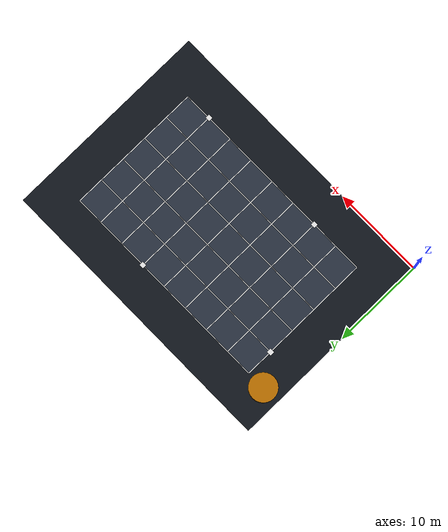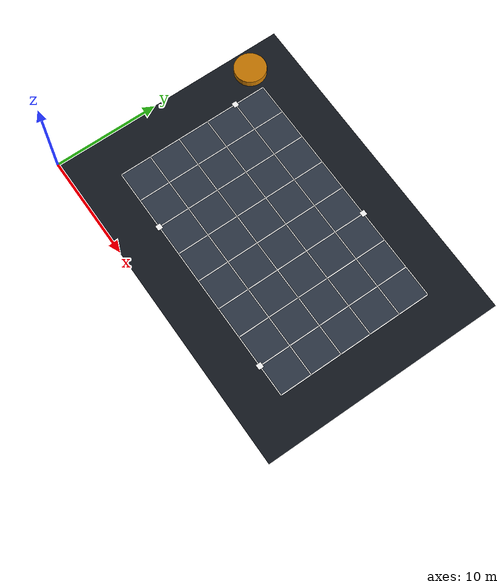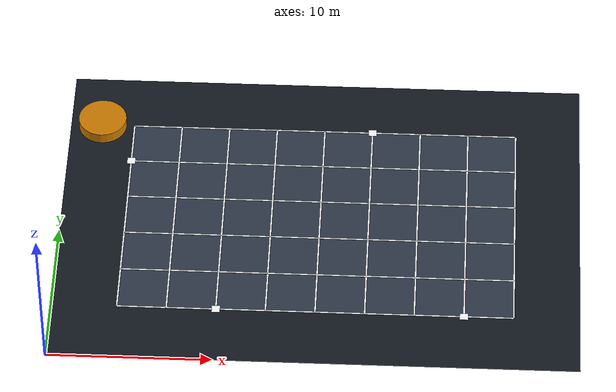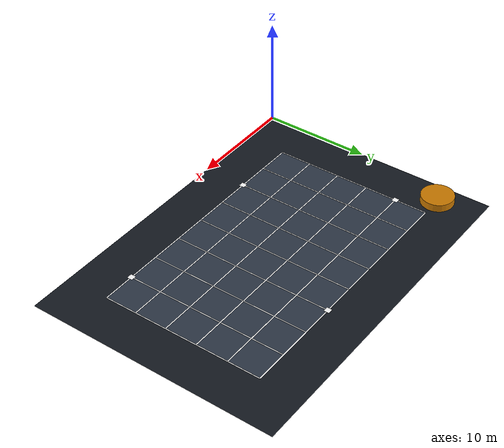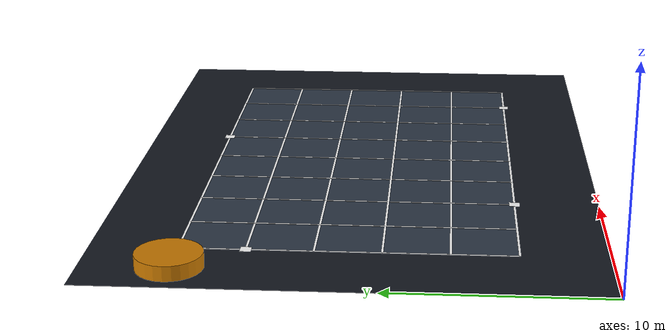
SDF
<sdf version="1.10">
 <world name="sprint_grid_world">
  <physics name="1ms" type="ode">
   <max_step_size>0.001</max_step_size>
   <real_time_factor>1.0</real_time_factor>
  </physics>
  <gravity>0 0 -9.8</gravity>
  <magnetic_field>6e-06 2.3e-05 -4.2e-05</magnetic_field>
  <atmosphere type="adiabatic"/>
  <scene>
   <grid>false</grid>
   <ambient>0.9 0.9 0.9 1</ambient>
   <background>0.05 0.06 0.08 1</background>
   <shadows>false</shadows>
  </scene>
  <spherical_coordinates>
   <surface_model>EARTH_WGS84</surface_model>
   <world_frame_orientation>ENU</world_frame_orientation>
   <latitude_deg>47.397971057728974</latitude_deg>
   <longitude_deg>8.546163739800146</longitude_deg>
   <elevation>0</elevation>
  </spherical_coordinates>
  <plugin filename="gz-sim-physics-system" name="gz::sim::systems::Physics"/>
  <plugin filename="gz-sim-sensors-system" name="gz::sim::systems::Sensors">
   <render_engine>ogre2</render_engine>
  </plugin>
  <plugin filename="gz-sim-scene-broadcaster-system" name="gz::sim::systems::SceneBroadcaster"/>
  <plugin filename="gz-sim-user-commands-system" name="gz::sim::systems::UserCommands"/>
  <plugin filename="gz-sim-imu-system" name="gz::sim::systems::Imu"/>
  <plugin filename="gz-sim-air-pressure-system" name="gz::sim::systems::AirPressure"/>
  <plugin filename="gz-sim-magnetometer-system" name="gz::sim::systems::Magnetometer"/>
  <plugin filename="gz-sim-navsat-system" name="gz::sim::systems::NavSat"/>
  <model name="safe_area_floor">
   <static>true</static>
   <pose>16 11.5 0 0 0 0</pose>
   <link name="link">
    <visual name="visual">
     <geometry><box><size>32 23 0.02</size></box></geometry>
     <material><ambient>0.08 0.10 0.13 1</ambient><diffuse>0.08 0.10 0.13 1</diffuse></material>
    </visual>
    <collision name="collision">
     <geometry><box><size>32 23 0.10</size></box></geometry>
     <surface><friction><ode><mu>0.8</mu><mu2>0.8</mu2></ode></friction></surface>
    </collision>
   </link>
  </model>
  <model name="mission_area">
   <static>true</static>
   <pose>16 11.5 0.015 0 0 0</pose>
   <link name="link">
    <visual name="visual">
     <geometry><box><size>24 15 0.01</size></box></geometry>
     <material><ambient>0.18 0.22 0.28 1</ambient><diffuse>0.18 0.22 0.28 1</diffuse></material>
    </visual>
   </link>
  </model>
  <model name="grid_lines">
   <static>true</static>
   <link name="link">
    <visual name="h_0">
     <pose>16  4 0.03 0 0 0</pose>
     <geometry><box><size>24 0.10 0.01</size></box></geometry>
     <material><ambient>1 1 1 1</ambient><diffuse>1 1 1 1</diffuse></material>
    </visual>
    <visual name="h_1">
     <pose>16  7 0.03 0 0 0</pose>
     <geometry><box><size>24 0.10 0.01</size></box></geometry>
     <material><ambient>1 1 1 1</ambient><diffuse>1 1 1 1</diffuse></material>
    </visual>
    <visual name="h_2">
     <pose>16 10 0.03 0 0 0</pose>
     <geometry><box><size>24 0.10 0.01</size></box></geometry>
     <material><ambient>1 1 1 1</ambient><diffuse>1 1 1 1</diffuse></material>
    </visual>
    <visual name="h_3">
     <pose>16 13 0.03 0 0 0</pose>
     <geometry><box><size>24 0.10 0.01</size></box></geometry>
     <material><ambient>1 1 1 1</ambient><diffuse>1 1 1 1</diffuse></material>
    </visual>
    <visual name="h_4">
     <pose>16 16 0.03 0 0 0</pose>
     <geometry><box><size>24 0.10 0.01</size></box></geometry>
     <material><ambient>1 1 1 1</ambient><diffuse>1 1 1 1</diffuse></material>
    </visual>
    <visual name="h_5">
     <pose>16 19 0.03 0 0 0</pose>
     <geometry><box><size>24 0.10 0.01</size></box></geometry>
     <material><ambient>1 1 1 1</ambient><diffuse>1 1 1 1</diffuse></material>
    </visual>
    <visual name="v_0">
     <pose>4 11.5 0.03 0 0 0</pose>
     <geometry><box><size>0.10 15 0.01</size></box></geometry>
     <material><ambient>1 1 1 1</ambient><diffuse>1 1 1 1</diffuse></material>
    </visual>
    <visual name="v_1">
     <pose>7 11.5 0.03 0 0 0</pose>
     <geometry><box><size>0.10 15 0.01</size></box></geometry>
     <material><ambient>1 1 1 1</ambient><diffuse>1 1 1 1</diffuse></material>
    </visual>
    <visual name="v_2">
     <pose>10 11.5 0.03 0 0 0</pose>
     <geometry><box><size>0.10 15 0.01</size></box></geometry>
     <material><ambient>1 1 1 1</ambient><diffuse>1 1 1 1</diffuse></material>
    </visual>
    <visual name="v_3">
     <pose>13 11.5 0.03 0 0 0</pose>
     <geometry><box><size>0.10 15 0.01</size></box></geometry>
     <material><ambient>1 1 1 1</ambient><diffuse>1 1 1 1</diffuse></material>
    </visual>
    <visual name="v_4">
     <pose>16 11.5 0.03 0 0 0</pose>
     <geometry><box><size>0.10 15 0.01</size></box></geometry>
     <material><ambient>1 1 1 1</ambient><diffuse>1 1 1 1</diffuse></material>
    </visual>
    <visual name="v_5">
     <pose>19 11.5 0.03 0 0 0</pose>
     <geometry><box><size>0.10 15 0.01</size></box></geometry>
     <material><ambient>1 1 1 1</ambient><diffuse>1 1 1 1</diffuse></material>
    </visual>
    <visual name="v_6">
     <pose>22 11.5 0.03 0 0 0</pose>
     <geometry><box><size>0.10 15 0.01</size></box></geometry>
     <material><ambient>1 1 1 1</ambient><diffuse>1 1 1 1</diffuse></material>
    </visual>
    <visual name="v_7">
     <pose>25 11.5 0.03 0 0 0</pose>
     <geometry><box><size>0.10 15 0.01</size></box></geometry>
     <material><ambient>1 1 1 1</ambient><diffuse>1 1 1 1</diffuse></material>
    </visual>
    <visual name="v_8">
     <pose>28 11.5 0.03 0 0 0</pose>
     <geometry><box><size>0.10 15 0.01</size></box></geometry>
     <material><ambient>1 1 1 1</ambient><diffuse>1 1 1 1</diffuse></material>
    </visual>
   </link>
  </model>
  <model name="vertiport">
   <static>true</static>
   <pose>2 19 0.36 0 0 0</pose>
   <link name="link">
    <visual name="pad">
     <geometry><cylinder><radius>1.5</radius><length>0.7</length></cylinder></geometry>
     <material><ambient>0.80 0.48 0.00 1</ambient><diffuse>0.80 0.48 0.00 1</diffuse></material>
    </visual>
    <collision name="collision">
     <geometry><cylinder><radius>1.5</radius><length>0.7</length></cylinder></geometry>
     <surface><friction><ode><mu>0.8</mu><mu2>0.8</mu2></ode></friction></surface>
    </collision>
   </link>
  </model>
  <model name="aruco_marker_1">
   <static>true</static>
   <pose>19.000 19.000 0.043 0 0 0</pose>
   <link name="link">
    <visual name="visual">
     <geometry><box><size>0.5 0.5 0.005</size></box></geometry>
     <material>
      <diffuse>1 1 1 1</diffuse>
      <ambient>1 1 1 1</ambient>
      <pbr><metal><albedo_map>model://aruco_textures/materials/textures/aruco_1.png</albedo_map></metal></pbr>
     </material>
    </visual>
   </link>
  </model>
  <model name="aruco_marker_2">
   <static>true</static>
   <pose>4.000 16.000 0.043 0 0 0</pose>
   <link name="link">
    <visual name="visual">
     <geometry><box><size>0.5 0.5 0.005</size></box></geometry>
     <material>
      <diffuse>1 1 1 1</diffuse>
      <ambient>1 1 1 1</ambient>
      <pbr><metal><albedo_map>model://aruco_textures/materials/textures/aruco_2.png</albedo_map></metal></pbr>
     </material>
    </visual>
   </link>
  </model>
  <model name="aruco_marker_3">
   <static>true</static>
   <pose>10.000 4.000 0.043 0 0 0</pose>
   <link name="link">
    <visual name="visual">
     <geometry><box><size>0.5 0.5 0.005</size></box></geometry>
     <material>
      <diffuse>1 1 1 1</diffuse>
      <ambient>1 1 1 1</ambient>
      <pbr><metal><albedo_map>model://aruco_textures/materials/textures/aruco_3.png</albedo_map></metal></pbr>
     </material>
    </visual>
   </link>
  </model>
  <model name="aruco_marker_4">
   <static>true</static>
   <pose>25.000 4.000 0.043 0 0 0</pose>
   <link name="link">
    <visual name="visual">
     <geometry><box><size>0.5 0.5 0.005</size></box></geometry>
     <material>
      <diffuse>1 1 1 1</diffuse>
      <ambient>1 1 1 1</ambient>
      <pbr><metal><albedo_map>model://aruco_textures/materials/textures/aruco_4.png</albedo_map></metal></pbr>
     </material>
    </visual>
   </link>
  </model>
 </world>
</sdf>
